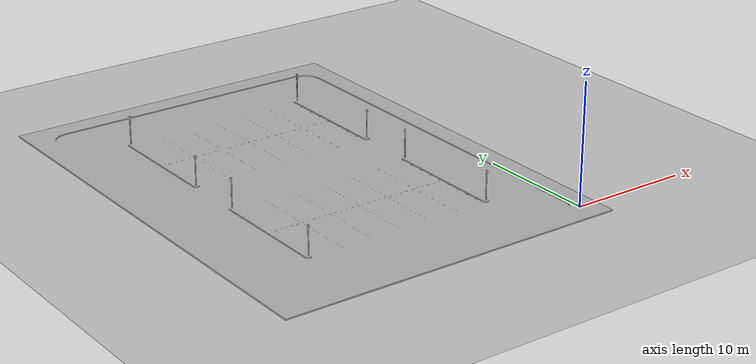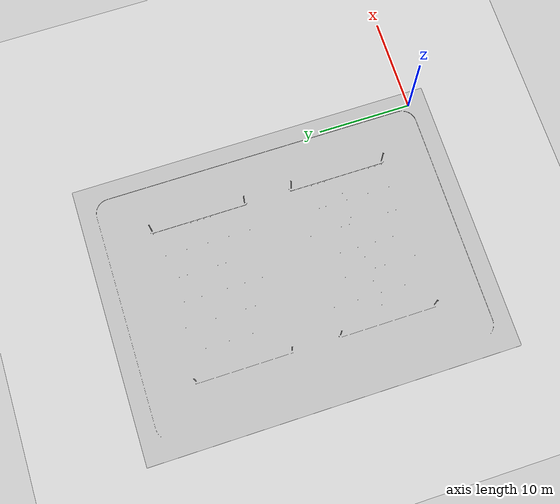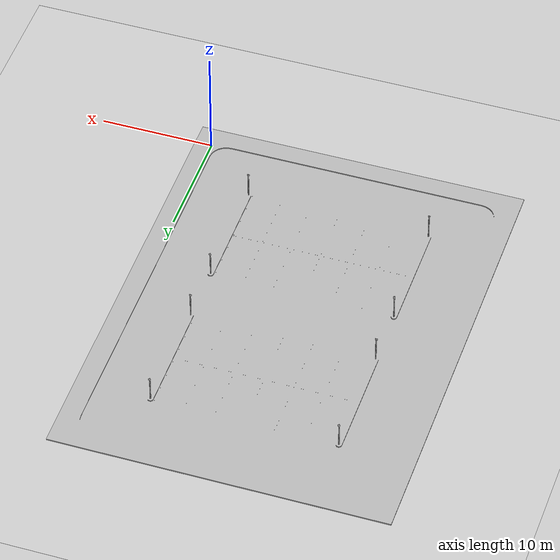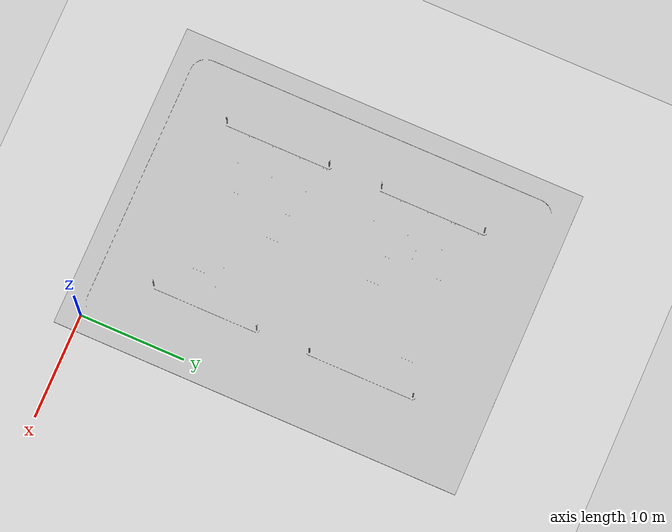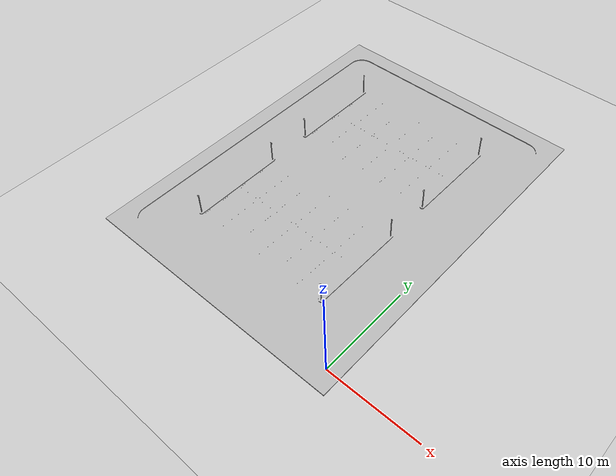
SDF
<?xml version="1.0" encoding="UTF-8"?>
<sdf version="1.9">
  <world name="default">
    <physics type="ode">
      <max_step_size>0.004</max_step_size>
      <real_time_factor>1.0</real_time_factor>
      <real_time_update_rate>250</real_time_update_rate>
    </physics>
    <gravity>0 0 -9.81</gravity>
    <magnetic_field>6e-06 2.3e-05 -4.2e-05</magnetic_field>
    <atmosphere type="adiabatic"/>
    <scene>
      <grid>false</grid>
      <ambient>0.4 0.4 0.4 1</ambient>
      <background>0.7 0.7 0.7 1</background>
      <sky>
        <time>12.0</time>
        <clouds>true</clouds>
      </sky>
      <shadows>true</shadows>
    </scene>
    <model name="estacionamiento">
      <static>true</static>
      <link name="link">
        <collision name='collision'>
          <geometry>
            <mesh>
              <uri>model://estacionamiento_2/estacionamiento_2.obj</uri>
            </mesh>
          </geometry>
        </collision>
        <visual name='visual'>
          <geometry>
            <mesh>
              <uri>model://estacionamiento_2/estacionamiento_2.obj</uri>
            </mesh>
          </geometry>
        </visual>
        <pose>-0.1 -1.5 0 0 0 0</pose>
        <inertial>
          <mass>1</mass>
          <inertia>
            <ixx>1</ixx><ixy>0</ixy><ixz>0</ixz>
            <iyy>1</iyy><iyz>0</iyz>
            <izz>1</izz>
          </inertia>
        </inertial>
      </link>
      <pose>-0.2 -0.475 0 0 0 0</pose>
    </model>

    <light name="sunUTC" type="directional">
      <pose>0 0 500 0 -0 0</pose>
      <cast_shadows>true</cast_shadows>
      <intensity>1</intensity>
      <direction>-0.5 0.1 -0.9</direction>
      <diffuse>0.904 0.904 0.904 1</diffuse>
      <specular>0.271 0.271 0.271 1</specular>
      <attenuation>
        <range>2000</range>
        <linear>0</linear>
        <constant>1</constant>
        <quadratic>0</quadratic>
      </attenuation>
    </light>

    <magnetic_field>4.7e-05 0 0</magnetic_field>

    <model name='ground_plane'>
      <static>true</static>
      <link name='link'>
        <collision name='collision'>
          <geometry>
            <plane>
              <normal>0 0 1</normal>
              <size>1 1</size>
            </plane>
          </geometry>
          <surface>
            <friction>
              <ode/>
            </friction>
            <bounce/>
            <contact/>
          </surface>
        </collision>
        <visual name='visual'>
          <geometry>
            <plane>
              <normal>0 0 1</normal>
              <size>100 100</size>
            </plane>
          </geometry>
          <material>
            <ambient>0.8 0.8 0.8 1</ambient>
            <diffuse>0.8 0.8 0.8 1</diffuse>
            <specular>0.8 0.8 0.8 1</specular>
          </material>
        </visual>
        <pose>0 0 0.35 0 0 0</pose>
        <inertial>
          <pose>0 0 0 0 -0 0</pose>
          <mass>1</mass>
          <inertia>
            <ixx>1</ixx>
            <ixy>0</ixy>
            <ixz>0</ixz>
            <iyy>1</iyy>
            <iyz>0</iyz>
            <izz>1</izz>
          </inertia>
        </inertial>
        <enable_wind>true</enable_wind>
      </link>
      <pose>0 0 -0.35 0 -0 0</pose>
      <self_collide>false</self_collide>
    </model>

    <spherical_coordinates>
      <surface_model>EARTH_WGS84</surface_model>
      <world_frame_orientation>ENU</world_frame_orientation>
      <latitude_deg>0.0</latitude_deg>
      <longitude_deg>0.0</longitude_deg>
      <elevation>0</elevation>
    </spherical_coordinates>

    <plugin name="gz::sim::systems::Physics" filename="gz-sim-physics-system"/>
    <plugin name="gz::sim::systems::UserCommands" filename="gz-sim-user-commands-system"/>
    <plugin name="gz::sim::systems::SceneBroadcaster" filename="gz-sim-scene-broadcaster-system"/>
    <plugin name="gz::sim::systems::Contact" filename="gz-sim-contact-system"/>
    <plugin name="gz::sim::systems::Imu" filename="gz-sim-imu-system"/>
    <plugin name="gz::sim::systems::AirPressure" filename="gz-sim-air-pressure-system"/>
    <plugin name="gz::sim::systems::ApplyLinkWrench" filename="gz-sim-apply-link-wrench-system"/>
    <plugin name="gz::sim::systems::NavSat" filename="gz-sim-navsat-system"/>
    <plugin name="gz::sim::systems::Sensors" filename="gz-sim-sensors-system">
      <render_engine>ogre2</render_engine>
    </plugin>
  </world>
</sdf>
